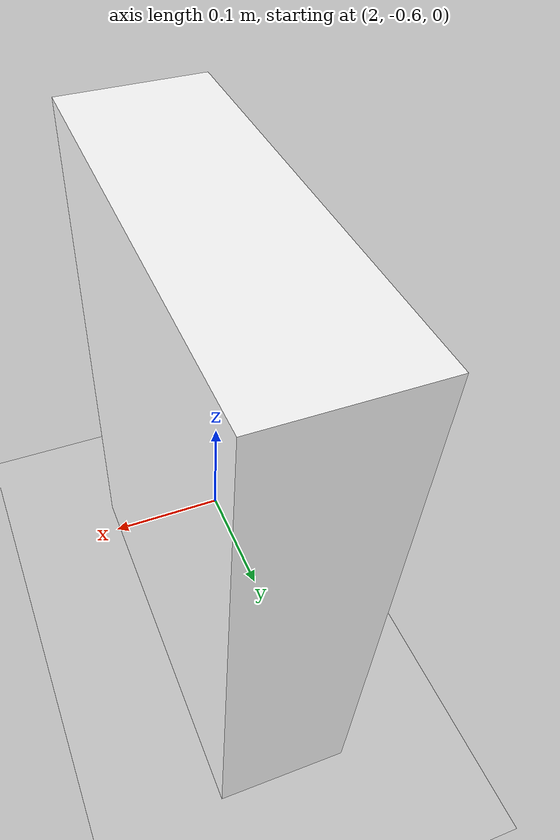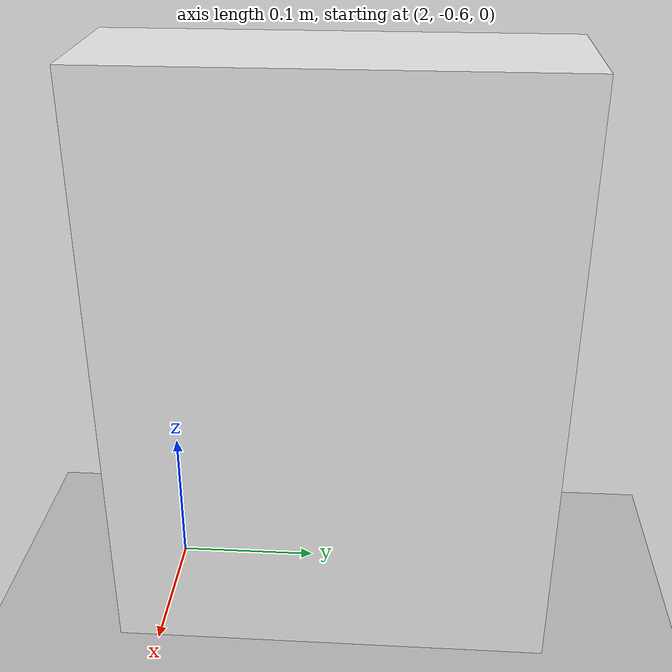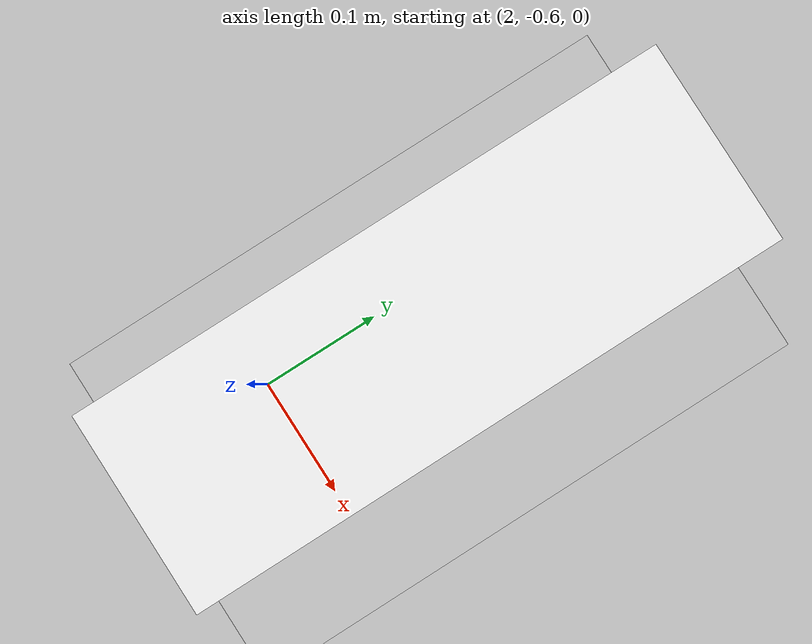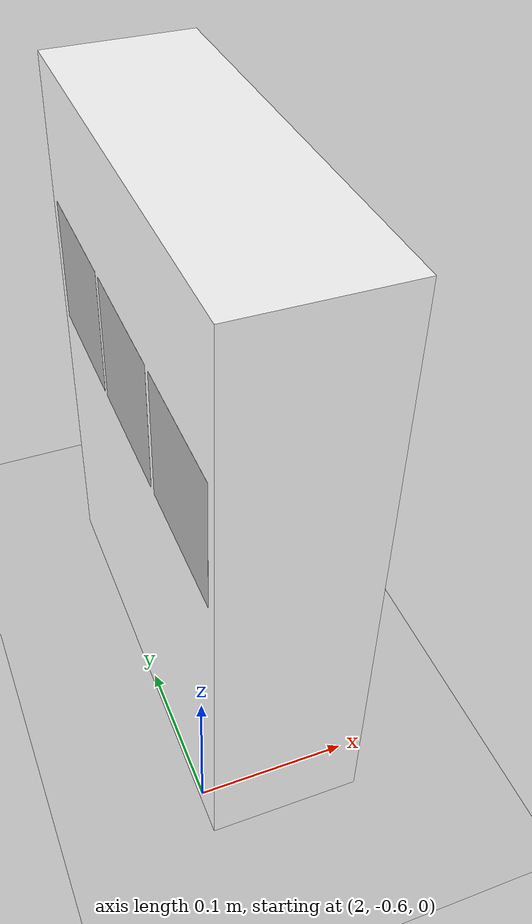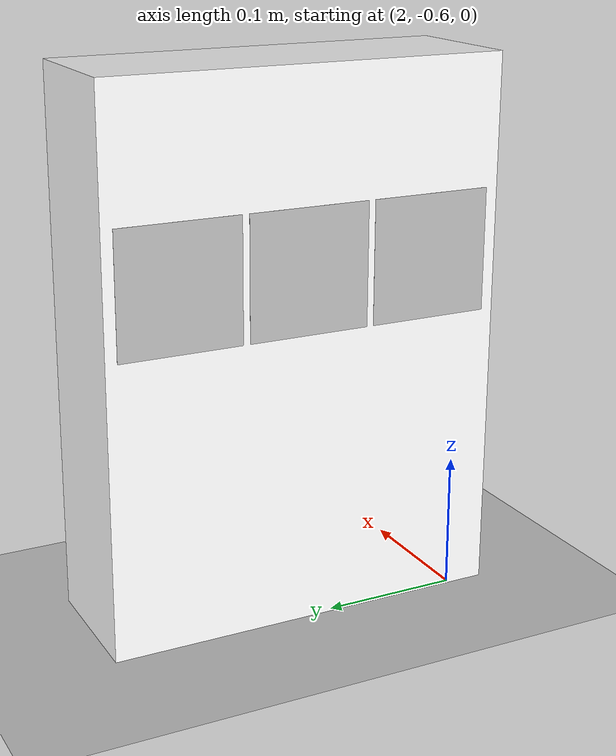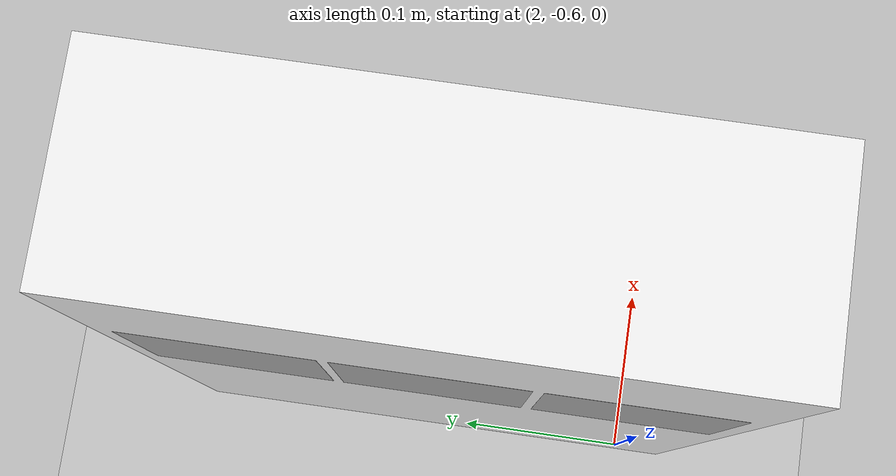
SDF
<sdf version="1.7">
 <world name="default">
  <light name="sun" type="directional">
   <pose>0 0 10 0 -0 0</pose>
   <diffuse>0.8 0.8 0.8 1</diffuse>
   <specular>0.2 0.2 0.2 1</specular>
   <attenuation>
    <range>1000</range>
    <constant>0.9</constant>
    <linear>0.01</linear>
    <quadratic>0.001</quadratic>
   </attenuation>
   <direction>-0.5 0.1 -0.9</direction>
   <spot><inner_angle>0</inner_angle><outer_angle>0</outer_angle><falloff>0</falloff></spot>
  </light>
  <model name="ground_plane">
   <static>1</static>
   <link name="link">
    <collision name="collision">
     <geometry><plane><normal>0 0 1</normal><size>100 100</size></plane></geometry>
     <surface>
      <contact><collide_bitmask>65535</collide_bitmask></contact>
      <friction><ode><mu>100</mu><mu2>50</mu2></ode></friction>
     </surface>
    </collision>
    <visual name="visual">
     <cast_shadows>0</cast_shadows>
     <geometry><plane><normal>0 0 1</normal><size>100 100</size></plane></geometry>
     <material>
      <script><uri>file://media/materials/scripts/gazebo.material</uri><name>Gazebo/Grey</name></script>
     </material>
    </visual>
   </link>
  </model>
  <physics type="ode">
   <real_time_update_rate>1000</real_time_update_rate>
   <max_step_size>0.001</max_step_size>
   <real_time_factor>1</real_time_factor>
   <ode>
    <solver>
     <type>quick</type>
     <iters>150</iters>
     <precon_iters>0</precon_iters>
     <sor>1.4</sor>
     <use_dynamic_moi_rescaling>1</use_dynamic_moi_rescaling>
    </solver>
    <constraints>
     <cfm>1e-05</cfm>
     <erp>0.2</erp>
     <contact_max_correcting_vel>2000</contact_max_correcting_vel>
     <contact_surface_layer>0.01</contact_surface_layer>
    </constraints>
   </ode>
  </physics>
  <scene><ambient>0.4 0.4 0.4 1</ambient><background>0.7 0.7 0.7 1</background><shadows>1</shadows></scene>
  <gravity>0 0 -9.8</gravity>
  <magnetic_field>6e-06 2.3e-05 -4.2e-05</magnetic_field>
  <atmosphere type="adiabatic"/>
  <spherical_coordinates>
   <surface_model>EARTH_WGS84</surface_model>
   <latitude_deg>0</latitude_deg>
   <longitude_deg>0</longitude_deg>
   <elevation>0</elevation>
   <heading_deg>0</heading_deg>
  </spherical_coordinates>
  <model name="Apriltag_box">
   <link name="link">
    <inertial>
     <mass>1</mass>
     <inertia><ixx>0.083</ixx><ixy>0</ixy><ixz>0</ixz><iyy>0.083</iyy><iyz>0</iyz><izz>0.083</izz></inertia>
    </inertial>
    <visual name="front_visual24">
     <pose>-0.05005 0.095 0.06 0 -0 3.14159</pose>
     <geometry><box><size>0.0001 0.09 0.09</size></box></geometry>
     <material>
      <script>
       <uri>model://Apriltag_box/materials/scripts</uri>
       <uri>model://Apriltag_box/materials/textures</uri>
       <name>Marker24</name>
      </script>
     </material>
    </visual>
    <visual name="front_visual25">
     <pose>-0.05005 0 0.06 0 -0 3.14159</pose>
     <geometry><box><size>0.0001 0.09 0.09</size></box></geometry>
     <material>
      <script>
       <uri>model://Apriltag_box/materials/scripts</uri>
       <uri>model://Apriltag_box/materials/textures</uri>
       <name>Marker25</name>
      </script>
     </material>
    </visual>
    <visual name="front_visual26">
     <pose>-0.05005 -0.095 0.06 0 -0 3.14159</pose>
     <geometry><box><size>0.0001 0.09 0.09</size></box></geometry>
     <material>
      <script>
       <uri>model://Apriltag_box/materials/scripts</uri>
       <uri>model://Apriltag_box/materials/textures</uri>
       <name>Marker26</name>
      </script>
     </material>
    </visual>
    <visual name="rear_visual">
     <pose>-5e-05 0 0 0 -0 0</pose>
     <geometry><box><size>0.1 0.297 0.4</size></box></geometry>
     <material>
      <ambient>1 1 1 1</ambient>
      <diffuse>1 1 1 1</diffuse>
      <specular>0.1 0.1 0.1 1</specular>
      <emissive>0 0 0 0</emissive>
     </material>
    </visual>
    <collision name="collision"><geometry><box><size>0.1 0.297 0.4</size></box></geometry></collision>
   </link>
   <pose>2.04763 -0.479405 0.199999 -8e-06 2e-06 -1.7e-05</pose>
  </model>
 </world>
</sdf>
